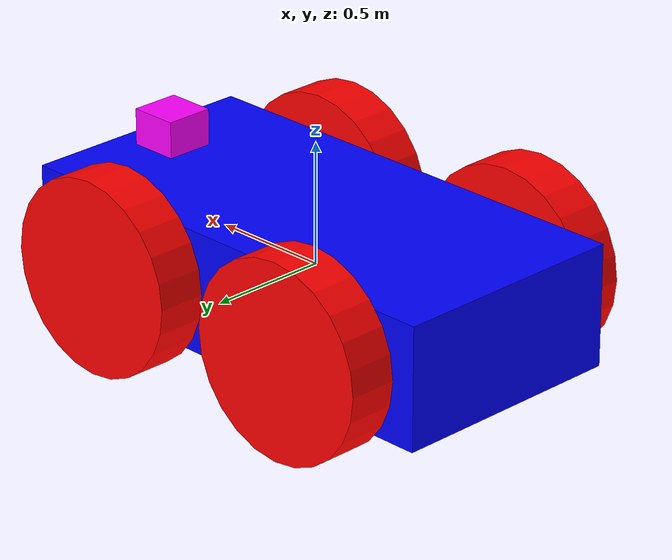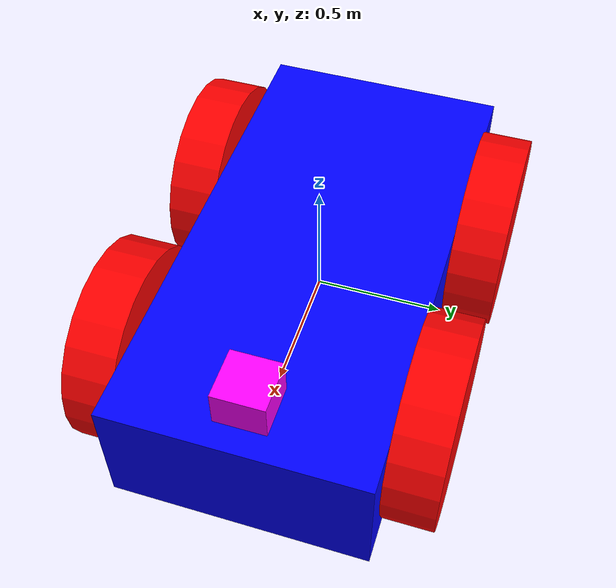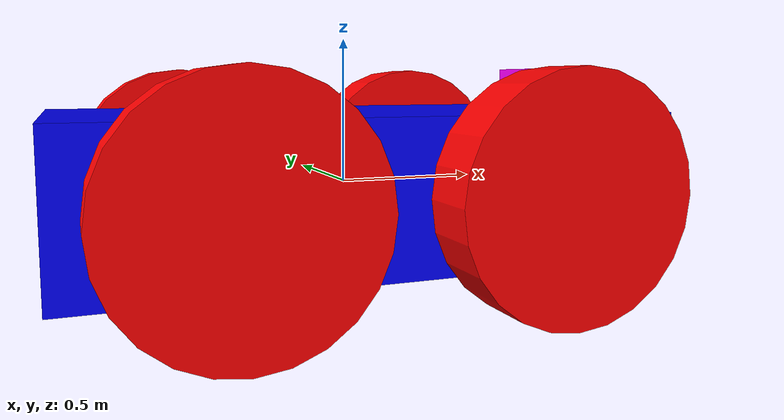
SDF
<?xml version="1.0"?>
<sdf version="1.10">

    <model name="wave_rover_4wd" canonical_link="telo">
        <!-- Telo robota -->
        <link name="telo">
            <collision name="collision">
                <geometry>
                    <box><size>2.0 1.0 0.5</size></box>
                </geometry>
            </collision>
            <visual name="visual">
                <geometry>
                   <box><size>2.0 1.0 0.5</size></box>
                </geometry>
                <material>
                    <ambient>0.0 0.0 1.0 1</ambient>
                    <diffuse>0.0 0.0 1.0 1</diffuse>
                    <specular>0.0 0.0 1.0 1</specular>
                </material>
            </visual>
        </link>

        <!-- Zadné ľavé koleso -->
        <link name="zadne_lave_koleso">
            <pose relative_to="telo">-0.5 0.6 0 -1.5707 0 0</pose>
            <collision name="collision">
                <geometry>
                    <cylinder><radius>0.4</radius><length>0.2</length></cylinder>
                </geometry>
            </collision>
            <visual name="visual">
                <geometry>
                   <cylinder><radius>0.4</radius><length>0.2</length></cylinder>
                </geometry>
                <material>
                    <ambient>1.0 0.0 0.0 1</ambient>
                    <diffuse>1.0 0.0 0.0 1</diffuse>
                    <specular>1.0 0.0 0.0 1</specular>
                </material>
            </visual>
        </link>

        <joint name="zadne_lave_koleso_zaves" type="revolute">
            <pose relative_to="zadne_lave_koleso"/>
            <parent>telo</parent>
            <child>zadne_lave_koleso</child>
            <axis>
                <xyz expressed_in="__model__">0 1 0</xyz>
                <limit>
                    <lower>-1.79769e+308</lower>
                    <upper>1.79769e+308</upper>
                </limit>
            </axis>
        </joint>

        <!-- Zadné pravé koleso -->
        <link name="zadne_prave_koleso">
            <pose relative_to="telo">-0.5 -0.6 0 -1.5707 0 0</pose>
            <collision name="collision">
                <geometry>
                    <cylinder><radius>0.4</radius><length>0.2</length></cylinder>
                </geometry>
            </collision>
            <visual name="visual">
                <geometry>
                   <cylinder><radius>0.4</radius><length>0.2</length></cylinder>
                </geometry>
                <material>
                    <ambient>1.0 0.0 0.0 1</ambient>
                    <diffuse>1.0 0.0 0.0 1</diffuse>
                    <specular>1.0 0.0 0.0 1</specular>
                </material>
            </visual>
        </link>

        <joint name="zadne_prave_koleso_zaves" type="revolute">
            <pose relative_to="zadne_prave_koleso"/>
            <parent>telo</parent>
            <child>zadne_prave_koleso</child>
            <axis>
                <xyz expressed_in="__model__">0 1 0</xyz>
                <limit>
                    <lower>-1.79769e+308</lower>
                    <upper>1.79769e+308</upper>
                </limit>
            </axis>
        </joint>

        <!-- Predné ľavé koleso -->
        <link name="predne_lave_koleso">
            <pose relative_to="telo">0.5 0.6 0 -1.5707 0 0</pose>
            <collision name="collision">
                <geometry>
                    <cylinder><radius>0.4</radius><length>0.2</length></cylinder>
                </geometry>
            </collision>
            <visual name="visual">
                <geometry>
                   <cylinder><radius>0.4</radius><length>0.2</length></cylinder>
                </geometry>
                <material>
                    <ambient>1.0 0.0 0.0 1</ambient>
                    <diffuse>1.0 0.0 0.0 1</diffuse>
                    <specular>1.0 0.0 0.0 1</specular>
                </material>
            </visual>
        </link>

        <joint name="predne_lave_koleso_zaves" type="revolute">
            <pose relative_to="predne_lave_koleso"/>
            <parent>telo</parent>
            <child>predne_lave_koleso</child>
            <axis>
                <xyz expressed_in="__model__">0 1 0</xyz>
                <limit>
                    <lower>-1.79769e+308</lower>
                    <upper>1.79769e+308</upper>
                </limit>
            </axis>
        </joint>

        <!-- Predné pravé koleso -->
        <link name="predne_prave_koleso">
            <pose relative_to="telo">0.5 -0.6 0 -1.5707 0 0</pose>
            <collision name="collision">
                <geometry>
                    <cylinder><radius>0.4</radius><length>0.2</length></cylinder>
                </geometry>
            </collision>
            <visual name="visual">
                <geometry>
                   <cylinder><radius>0.4</radius><length>0.2</length></cylinder>
                </geometry>
                <material>
                    <ambient>1.0 0.0 0.0 1</ambient>
                    <diffuse>1.0 0.0 0.0 1</diffuse>
                    <specular>1.0 0.0 0.0 1</specular>
                </material>
            </visual>
        </link>

        <joint name="predne_prave_koleso_zaves" type="revolute">
            <pose relative_to="predne_prave_koleso"/>
            <parent>telo</parent>
            <child>predne_prave_koleso</child>
            <axis>
                <xyz expressed_in="__model__">0 1 0</xyz>
                <limit>
                    <lower>-1.79769e+308</lower>
                    <upper>1.79769e+308</upper>
                </limit>
            </axis>
        </joint>

        <!-- Kamera -->
        <frame name="camera_frame" attached_to="telo">
            <pose>0.8 0 0.3 0 0 0</pose>
        </frame>

        <link name="camera">
            <pose relative_to="camera_frame"></pose>
            <collision name="collision">
                <geometry>
                    <box><size>0.2 0.2 0.2</size></box>
                </geometry>
            </collision>
            <visual name="visual">
                <geometry>
                   <box><size>0.2 0.2 0.2</size></box>
                </geometry>
                <material>
                    <ambient>1.0 0.0 1.0 1</ambient>
                    <diffuse>1.0 0.0 1.0 1</diffuse>
                    <specular>1.0 0.0 1.0 1</specular>
                </material>
            </visual>

            <sensor name="camera" type="camera">
                <pose relative_to="camera_frame">0 0 0 0 0 0</pose>
                <camera>
                    <horizontal_fov>1.047</horizontal_fov> <!-- 60 degrees -->
                    <image>
                        <width>640</width>
                        <height>480</height>
                        <format>R8G8B8</format>
                    </image>
                    <clip>
                        <near>0.1</near>
                        <far>100</far>
                    </clip>
                </camera>
                <always_on>1</always_on>
                <update_rate>30</update_rate>
                <visualize>true</visualize>
                <topic>camera/image</topic>
            </sensor>
        </link>

        <joint name="camera_zaves" type="fixed">
            <parent>telo</parent>
            <child>camera</child>
        </joint>

        <!-- Pluginy -->
        <plugin filename="gz-sim-sensors-system" name="gz::sim::systems::Sensors">
            <render_engine>ogre2</render_engine>
        </plugin>

        <plugin filename="gz-sim-diff-drive-system" name="gz::sim::systems::DiffDrive">
            <left_joint>zadne_lave_koleso_zaves</left_joint>
            <right_joint>zadne_prave_koleso_zaves</right_joint>
            <left_joint>predne_lave_koleso_zaves</left_joint> <!-- Pridané predné kolesá -->
            <right_joint>predne_prave_koleso_zaves</right_joint> <!-- Pridané predné kolesá -->
            <wheel_separation>1.2</wheel_separation>
            <wheel_radius>0.4</wheel_radius>
            <odom_publish_frequency>1</odom_publish_frequency>
            <topic>cmd_vel</topic>
            <odom_topic>odom</odom_topic>
            <tf_topic>tf</tf_topic>
            <frame_id>odom</frame_id>
            <child_frame_id>telo</child_frame_id>
        </plugin>

        <plugin filename="gz-sim-joint-state-publisher-system"
            name="gz::sim::systems::JointStatePublisher">
            <topic>joint_states</topic>
            <joint_name>zadne_lave_koleso_zaves</joint_name>
            <joint_name>zadne_prave_koleso_zaves</joint_name>
            <joint_name>predne_lave_koleso_zaves</joint_name>
            <joint_name>predne_prave_koleso_zaves</joint_name>
        </plugin>
    </model>
</sdf>
